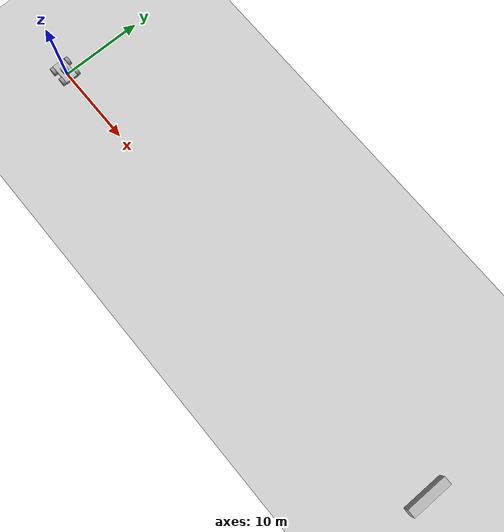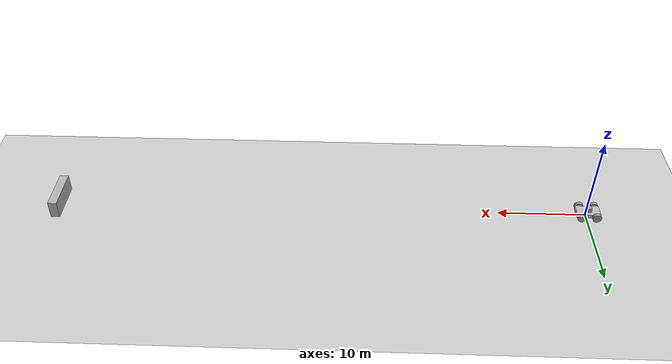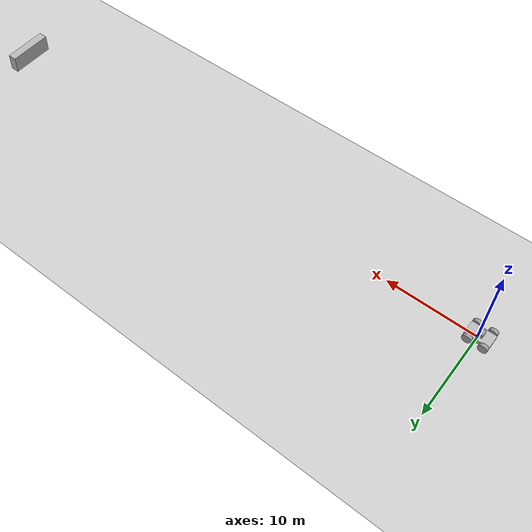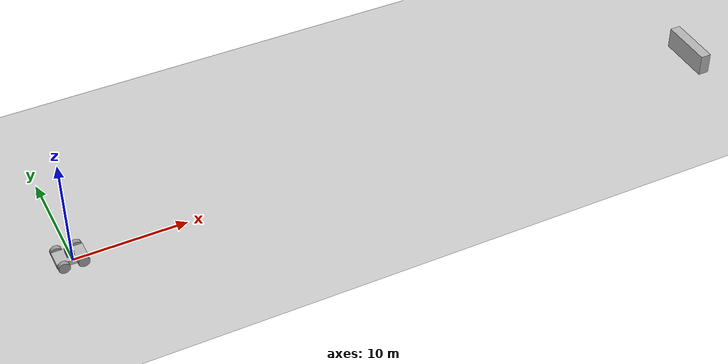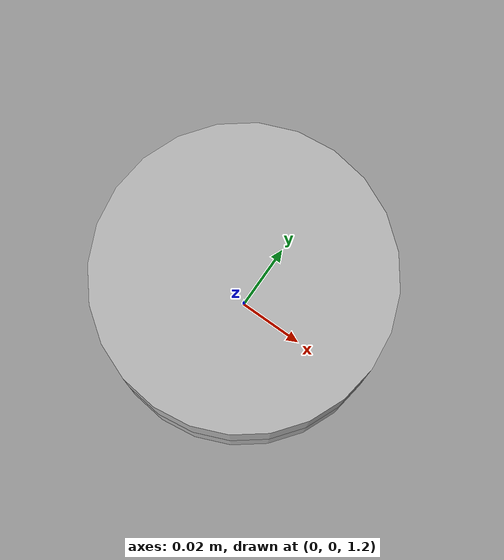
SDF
<?xml version='1.0'?>
<sdf version='1.7'>
<world name="default">

   <!-- Ground Plane -->
    <include>
      <uri>model://ground_plane</uri>
    </include>

    <include>
      <uri>model://sun</uri>
    </include>

  <model name='my_model'>
    <link name='base'>
      <pose>0 0 1.23274 0 -0 0</pose>
      <inertial>
        <mass>1.2</mass>
        <inertia>
          <ixx>0.00108747</ixx>
          <iyy>0.00108747</iyy>
          <izz>0.00109244</izz>
          <ixy>0</ixy>
          <ixz>0</ixz>
          <iyz>0</iyz>
        </inertia>
        <pose>0 0 0 0 -0 0</pose>
      </inertial>
      <self_collide>0</self_collide>
      <enable_wind>0</enable_wind>
      <kinematic>0</kinematic>
      <visual name='base_visual'>
        <geometry>
          <cylinder>
            <radius>0.04267</radius>
            <length>0.05867</length>
          </cylinder>
        </geometry>
        <material>
          <shader type='pixel'/>
          <emissive>0 0 0 1</emissive>
        </material>
        <pose>0 0 0 0 -0 0</pose>
        <transparency>0</transparency>
        <cast_shadows>1</cast_shadows>
      </visual>
      <collision name='base_collision'>
        <laser_retro>0</laser_retro>
        <max_contacts>10</max_contacts>
        <pose>0 0 0 0 -0 0</pose>
        <geometry>
          <cylinder>
            <radius>0.04267</radius>
            <length>0.05867</length>
          </cylinder>
        </geometry>
        <surface>
          <friction>
            <ode>
              <mu>1</mu>
              <mu2>1</mu2>
              <fdir1>0 0 0</fdir1>
              <slip1>0</slip1>
              <slip2>0</slip2>
            </ode>
            <torsional>
              <coefficient>1</coefficient>
              <patch_radius>0</patch_radius>
              <surface_radius>0</surface_radius>
              <use_patch_radius>1</use_patch_radius>
              <ode>
                <slip>0</slip>
              </ode>
            </torsional>
          </friction>
          <bounce>
            <restitution_coefficient>0</restitution_coefficient>
            <threshold>1e+06</threshold>
          </bounce>
          <contact>
            <collide_without_contact>0</collide_without_contact>
            <collide_without_contact_bitmask>1</collide_without_contact_bitmask>
            <collide_bitmask>1</collide_bitmask>
            <ode>
              <soft_cfm>0</soft_cfm>
              <soft_erp>0.2</soft_erp>
              <kp>1e+13</kp>
              <kd>1</kd>
              <max_vel>0.01</max_vel>
              <min_depth>0</min_depth>
            </ode>
            <bullet>
              <split_impulse>1</split_impulse>
              <split_impulse_penetration_threshold>-0.01</split_impulse_penetration_threshold>
              <soft_cfm>0</soft_cfm>
              <soft_erp>0.2</soft_erp>
              <kp>1e+13</kp>
              <kd>1</kd>
            </bullet>
          </contact>
        </surface>
      </collision>
    </link>
    <link name='chassis'>
      <pose>-0.18288 0.000148 0.5 0 -0 0</pose>
      <self_collide>0</self_collide>
      <inertial>
        <pose>0 0 0 0 -0 0</pose>
        <inertia>
          <ixx>1.08076</ixx>
          <ixy>0</ixy>
          <ixz>0</ixz>
          <iyy>2.95434</iyy>
          <iyz>0</iyz>
          <izz>3.87829</izz>
        </inertia>
        <mass>4.85628</mass>
      </inertial>
      <enable_wind>0</enable_wind>
      <kinematic>0</kinematic>
      <visual name='visual'>
        <geometry>
          <box>
            <size>2.6658 1.5738 0.440167</size>
          </box>
        </geometry>
        <material>
          <shader type='pixel'/>
          <emissive>0 0 0 1</emissive>
        </material>
        <pose>0 0 0 0 -0 0</pose>
        <transparency>0</transparency>
        <cast_shadows>1</cast_shadows>
      </visual>
      <collision name='collision'>
        <laser_retro>0</laser_retro>
        <max_contacts>10</max_contacts>
        <pose>0 0 0 0 -0 0</pose>
        <geometry>
          <box>
            <size>2.6658 1.5738 0.440167</size>
          </box>
        </geometry>
        <surface>
          <friction>
            <ode>
              <mu>1</mu>
              <mu2>1</mu2>
              <fdir1>0 0 0</fdir1>
              <slip1>0</slip1>
              <slip2>0</slip2>
            </ode>
            <torsional>
              <coefficient>1</coefficient>
              <patch_radius>0</patch_radius>
              <surface_radius>0</surface_radius>
              <use_patch_radius>1</use_patch_radius>
              <ode>
                <slip>0</slip>
              </ode>
            </torsional>
          </friction>
          <bounce>
            <restitution_coefficient>0</restitution_coefficient>
            <threshold>1e+06</threshold>
          </bounce>
          <contact>
            <collide_without_contact>0</collide_without_contact>
            <collide_without_contact_bitmask>1</collide_without_contact_bitmask>
            <collide_bitmask>1</collide_bitmask>
            <ode>
              <soft_cfm>0</soft_cfm>
              <soft_erp>0.2</soft_erp>
              <kp>1e+13</kp>
              <kd>1</kd>
              <max_vel>0.01</max_vel>
              <min_depth>0</min_depth>
            </ode>
            <bullet>
              <split_impulse>1</split_impulse>
              <split_impulse_penetration_threshold>-0.01</split_impulse_penetration_threshold>
              <soft_cfm>0</soft_cfm>
              <soft_erp>0.2</soft_erp>
              <kp>1e+13</kp>
              <kd>1</kd>
            </bullet>
          </contact>
        </surface>
      </collision>
    </link>
    <link name='left_wheel'>
      <pose>-1.00861 -1.02979 0.5 1.57076 0 -3.14159</pose>
      <self_collide>0</self_collide>
      <inertial>
        <pose>0 0 0 0 -0 0</pose>
        <inertia>
          <ixx>1</ixx>
          <ixy>0</ixy>
          <ixz>0</ixz>
          <iyy>1</iyy>
          <iyz>0</iyz>
          <izz>1</izz>
        </inertia>
        <mass>1</mass>
      </inertial>
      <enable_wind>0</enable_wind>
      <kinematic>0</kinematic>
      <gravity>1</gravity>
      <visual name='visual'>
        <geometry>
          <cylinder>
            <radius>0.5</radius>
            <length>0.4</length>
          </cylinder>
        </geometry>
        <material>
          <shader type='pixel'>
            <normal_map>__default__</normal_map>
          </shader>
          <emissive>0 0 0 1</emissive>
          <script>
            <name>Gazebo/Grey</name>
            <uri>__default__</uri>
          </script>
        </material>
        <pose>0 0 0 0 -0 0</pose>
        <transparency>0</transparency>
        <cast_shadows>1</cast_shadows>
      </visual>
      <collision name='collision'>
        <laser_retro>0</laser_retro>
        <max_contacts>10</max_contacts>
        <pose>0 0 0 0 -0 0</pose>
        <geometry>
          <cylinder>
            <radius>0.5</radius>
            <length>0.4</length>
          </cylinder>
        </geometry>
        <surface>
          <friction>
            <ode>
              <mu>1</mu>
              <mu2>1</mu2>
              <fdir1>0 0 0</fdir1>
              <slip1>0</slip1>
              <slip2>0</slip2>
            </ode>
            <torsional>
              <coefficient>1</coefficient>
              <patch_radius>0</patch_radius>
              <surface_radius>0</surface_radius>
              <use_patch_radius>1</use_patch_radius>
              <ode>
                <slip>0</slip>
              </ode>
            </torsional>
          </friction>
          <bounce>
            <restitution_coefficient>0</restitution_coefficient>
            <threshold>1e+06</threshold>
          </bounce>
          <contact>
            <collide_without_contact>0</collide_without_contact>
            <collide_without_contact_bitmask>1</collide_without_contact_bitmask>
            <collide_bitmask>1</collide_bitmask>
            <ode>
              <soft_cfm>0</soft_cfm>
              <soft_erp>0.2</soft_erp>
              <kp>1e+13</kp>
              <kd>1</kd>
              <max_vel>0.01</max_vel>
              <min_depth>0</min_depth>
            </ode>
            <bullet>
              <split_impulse>1</split_impulse>
              <split_impulse_penetration_threshold>-0.01</split_impulse_penetration_threshold>
              <soft_cfm>0</soft_cfm>
              <soft_erp>0.2</soft_erp>
              <kp>1e+13</kp>
              <kd>1</kd>
            </bullet>
          </contact>
        </surface>
      </collision>
    </link>
    <link name='left_wheel_2'>
      <pose>0.65 -0.9869 0.5 1.57076 0 -3.14159</pose>
      <self_collide>0</self_collide>
      <inertial>
        <pose>0 0 0.5 0 -0 0</pose>
        <inertia>
          <ixx>1</ixx>
          <ixy>0</ixy>
          <ixz>0</ixz>
          <iyy>1</iyy>
          <iyz>0</iyz>
          <izz>1</izz>
        </inertia>
        <mass>1</mass>
      </inertial>
      <enable_wind>0</enable_wind>
      <kinematic>0</kinematic>
      <gravity>1</gravity>
      <visual name='visual'>
        <geometry>
          <cylinder>
            <radius>0.5</radius>
            <length>0.4</length>
          </cylinder>
        </geometry>
        <material>
          <shader type='pixel'>
            <normal_map>__default__</normal_map>
          </shader>
          <emissive>0 0 0 1</emissive>
          <script>
            <name>Gazebo/Grey</name>
            <uri>__default__</uri>
          </script>
        </material>
        <pose>0 0 0 0 -0 0</pose>
        <transparency>0</transparency>
        <cast_shadows>1</cast_shadows>
      </visual>
      <collision name='collision'>
        <laser_retro>0</laser_retro>
        <max_contacts>10</max_contacts>
        <pose>0 0 0 0 -0 0</pose>
        <geometry>
          <cylinder>
            <radius>0.5</radius>
            <length>0.4</length>
          </cylinder>
        </geometry>
        <surface>
          <friction>
            <ode>
              <mu>1</mu>
              <mu2>1</mu2>
              <fdir1>0 0 0</fdir1>
              <slip1>0</slip1>
              <slip2>0</slip2>
            </ode>
            <torsional>
              <coefficient>1</coefficient>
              <patch_radius>0</patch_radius>
              <surface_radius>0</surface_radius>
              <use_patch_radius>1</use_patch_radius>
              <ode>
                <slip>0</slip>
              </ode>
            </torsional>
          </friction>
          <bounce>
            <restitution_coefficient>0</restitution_coefficient>
            <threshold>1e+06</threshold>
          </bounce>
          <contact>
            <collide_without_contact>0</collide_without_contact>
            <collide_without_contact_bitmask>1</collide_without_contact_bitmask>
            <collide_bitmask>1</collide_bitmask>
            <ode>
              <soft_cfm>0</soft_cfm>
              <soft_erp>0.2</soft_erp>
              <kp>1e+13</kp>
              <kd>1</kd>
              <max_vel>0.01</max_vel>
              <min_depth>0</min_depth>
            </ode>
            <bullet>
              <split_impulse>1</split_impulse>
              <split_impulse_penetration_threshold>-0.01</split_impulse_penetration_threshold>
              <soft_cfm>0</soft_cfm>
              <soft_erp>0.2</soft_erp>
              <kp>1e+13</kp>
              <kd>1</kd>
            </bullet>
          </contact>
        </surface>
      </collision>
    </link>
    <link name='link_0'>
      <inertial>
        <mass>0.145074</mass>
        <inertia>
          <ixx>0.00715103</ixx>
          <ixy>0</ixy>
          <ixz>0</ixz>
          <iyy>0.00610989</iyy>
          <iyz>0</iyz>
          <izz>0.0105745</izz>
        </inertia>
        <pose>0 0 0 0 -0 0</pose>
      </inertial>
      <pose>-0.18288 0.000148 0.886746 0 -0 0</pose>
      <self_collide>0</self_collide>
      <enable_wind>0</enable_wind>
      <kinematic>0</kinematic>
      <visual name='visual'>
        <pose>0 0 0 0 -0 0</pose>
        <geometry>
          <box>
            <size>0.62792 0.693111 0.633325</size>
          </box>
        </geometry>
        <material>
          <lighting>1</lighting>
          <script>
            <uri>file://media/materials/scripts/gazebo.material</uri>
            <name>Gazebo/Grey</name>
          </script>
          <shader type='pixel'/>
          <emissive>0 0 0 1</emissive>
        </material>
        <transparency>0</transparency>
        <cast_shadows>1</cast_shadows>
      </visual>
      <collision name='collision'>
        <laser_retro>0</laser_retro>
        <max_contacts>10</max_contacts>
        <pose>0 0 0 0 -0 0</pose>
        <geometry>
          <box>
            <size>0.62792 0.693111 0.633325</size>
          </box>
        </geometry>
        <surface>
          <friction>
            <ode>
              <mu>1</mu>
              <mu2>1</mu2>
              <fdir1>0 0 0</fdir1>
              <slip1>0</slip1>
              <slip2>0</slip2>
            </ode>
            <torsional>
              <coefficient>1</coefficient>
              <patch_radius>0</patch_radius>
              <surface_radius>0</surface_radius>
              <use_patch_radius>1</use_patch_radius>
              <ode>
                <slip>0</slip>
              </ode>
            </torsional>
          </friction>
          <bounce>
            <restitution_coefficient>0</restitution_coefficient>
            <threshold>1e+06</threshold>
          </bounce>
          <contact>
            <collide_without_contact>0</collide_without_contact>
            <collide_without_contact_bitmask>1</collide_without_contact_bitmask>
            <collide_bitmask>1</collide_bitmask>
            <ode>
              <soft_cfm>0</soft_cfm>
              <soft_erp>0.2</soft_erp>
              <kp>1e+13</kp>
              <kd>1</kd>
              <max_vel>0.01</max_vel>
              <min_depth>0</min_depth>
            </ode>
            <bullet>
              <split_impulse>1</split_impulse>
              <split_impulse_penetration_threshold>-0.01</split_impulse_penetration_threshold>
              <soft_cfm>0</soft_cfm>
              <soft_erp>0.2</soft_erp>
              <kp>1e+13</kp>
              <kd>1</kd>
            </bullet>
          </contact>
        </surface>
      </collision>
    </link>
    <link name='right_wheel'>
      <pose>-1.0415 1.00283 0.5 1.57076 0 -3.14159</pose>
      <self_collide>0</self_collide>
      <inertial>
        <pose>0 0 0 0 -0 0</pose>
        <inertia>
          <ixx>1</ixx>
          <ixy>0</ixy>
          <ixz>0</ixz>
          <iyy>1</iyy>
          <iyz>0</iyz>
          <izz>1</izz>
        </inertia>
        <mass>1</mass>
      </inertial>
      <enable_wind>0</enable_wind>
      <kinematic>0</kinematic>
      <gravity>1</gravity>
      <visual name='visual'>
        <geometry>
          <cylinder>
            <radius>0.5</radius>
            <length>0.4</length>
          </cylinder>
        </geometry>
        <material>
          <shader type='pixel'>
            <normal_map>__default__</normal_map>
          </shader>
          <emissive>0 0 0 1</emissive>
          <script>
            <name>Gazebo/Grey</name>
            <uri>__default__</uri>
          </script>
        </material>
        <pose>0 0 0 0 -0 0</pose>
        <transparency>0</transparency>
        <cast_shadows>1</cast_shadows>
      </visual>
      <collision name='collision'>
        <laser_retro>0</laser_retro>
        <max_contacts>10</max_contacts>
        <pose>0 0 0 0 -0 0</pose>
        <geometry>
          <cylinder>
            <radius>0.5</radius>
            <length>0.4</length>
          </cylinder>
        </geometry>
        <surface>
          <friction>
            <ode>
              <mu>1</mu>
              <mu2>1</mu2>
              <fdir1>0 0 0</fdir1>
              <slip1>0</slip1>
              <slip2>0</slip2>
            </ode>
            <torsional>
              <coefficient>1</coefficient>
              <patch_radius>0</patch_radius>
              <surface_radius>0</surface_radius>
              <use_patch_radius>1</use_patch_radius>
              <ode>
                <slip>0</slip>
              </ode>
            </torsional>
          </friction>
          <bounce>
            <restitution_coefficient>0</restitution_coefficient>
            <threshold>1e+06</threshold>
          </bounce>
          <contact>
            <collide_without_contact>0</collide_without_contact>
            <collide_without_contact_bitmask>1</collide_without_contact_bitmask>
            <collide_bitmask>1</collide_bitmask>
            <ode>
              <soft_cfm>0</soft_cfm>
              <soft_erp>0.2</soft_erp>
              <kp>1e+13</kp>
              <kd>1</kd>
              <max_vel>0.01</max_vel>
              <min_depth>0</min_depth>
            </ode>
            <bullet>
              <split_impulse>1</split_impulse>
              <split_impulse_penetration_threshold>-0.01</split_impulse_penetration_threshold>
              <soft_cfm>0</soft_cfm>
              <soft_erp>0.2</soft_erp>
              <kp>1e+13</kp>
              <kd>1</kd>
            </bullet>
          </contact>
        </surface>
      </collision>
    </link>
    <link name='right_wheel_2'>
      <pose>0.649549 0.990184 0.5 1.57076 0 -3.14159</pose>
      <self_collide>0</self_collide>
      <inertial>
        <pose>0 0 0 0 -0 0</pose>
        <inertia>
          <ixx>1</ixx>
          <ixy>0</ixy>
          <ixz>0</ixz>
          <iyy>1</iyy>
          <iyz>0</iyz>
          <izz>1</izz>
        </inertia>
        <mass>1</mass>
      </inertial>
      <enable_wind>0</enable_wind>
      <kinematic>0</kinematic>
      <gravity>1</gravity>
      <visual name='visual'>
        <geometry>
          <cylinder>
            <radius>0.5</radius>
            <length>0.4</length>
          </cylinder>
        </geometry>
        <material>
          <shader type='pixel'>
            <normal_map>__default__</normal_map>
          </shader>
          <emissive>0 0 0 1</emissive>
          <script>
            <name>Gazebo/Grey</name>
            <uri>__default__</uri>
          </script>
        </material>
        <pose>0 0 0 0 -0 0</pose>
        <transparency>0</transparency>
        <cast_shadows>1</cast_shadows>
      </visual>
      <collision name='collision'>
        <laser_retro>0</laser_retro>
        <max_contacts>10</max_contacts>
        <pose>0 0 0 0 -0 0</pose>
        <geometry>
          <cylinder>
            <radius>0.5</radius>
            <length>0.4</length>
          </cylinder>
        </geometry>
        <surface>
          <friction>
            <ode>
              <mu>1</mu>
              <mu2>1</mu2>
              <fdir1>0 0 0</fdir1>
              <slip1>0</slip1>
              <slip2>0</slip2>
            </ode>
            <torsional>
              <coefficient>1</coefficient>
              <patch_radius>0</patch_radius>
              <surface_radius>0</surface_radius>
              <use_patch_radius>1</use_patch_radius>
              <ode>
                <slip>0</slip>
              </ode>
            </torsional>
          </friction>
          <bounce>
            <restitution_coefficient>0</restitution_coefficient>
            <threshold>1e+06</threshold>
          </bounce>
          <contact>
            <collide_without_contact>0</collide_without_contact>
            <collide_without_contact_bitmask>1</collide_without_contact_bitmask>
            <collide_bitmask>1</collide_bitmask>
            <ode>
              <soft_cfm>0</soft_cfm>
              <soft_erp>0.2</soft_erp>
              <kp>1e+13</kp>
              <kd>1</kd>
              <max_vel>0.01</max_vel>
              <min_depth>0</min_depth>
            </ode>
            <bullet>
              <split_impulse>1</split_impulse>
              <split_impulse_penetration_threshold>-0.01</split_impulse_penetration_threshold>
              <soft_cfm>0</soft_cfm>
              <soft_erp>0.2</soft_erp>
              <kp>1e+13</kp>
              <kd>1</kd>
            </bullet>
          </contact>
        </surface>
      </collision>
    </link>
    <link name='test_box'>
      <pose>60.5 -1e-06 1 0 -0 0</pose>
      <inertial>
        <mass>1</mass>
        <inertia>
          <ixx>0.1</ixx>
          <iyy>0.1</iyy>
          <izz>0.1</izz>
          <ixy>0</ixy>
          <ixz>0</ixz>
          <iyz>0</iyz>
        </inertia>
        <pose>0 0 0 0 -0 0</pose>
      </inertial>
      <self_collide>0</self_collide>
      <enable_wind>0</enable_wind>
      <kinematic>0</kinematic>
      <visual name='visual'>
        <geometry>
          <box>
            <size>1 5 2</size>
          </box>
        </geometry>
        <material>
          <ambient>0.7 0.7 0.7 1</ambient>
          <shader type='pixel'/>
          <script>
            <name>ModelPreview_1::test_box::visual_MATERIAL_</name>
            <uri>__default__</uri>
          </script>
        </material>
        <pose>0 0 0 0 -0 0</pose>
        <transparency>0</transparency>
        <cast_shadows>1</cast_shadows>
      </visual>
      <collision name='collision'>
        <laser_retro>0</laser_retro>
        <max_contacts>10</max_contacts>
        <pose>0 0 0 0 -0 0</pose>
        <geometry>
          <box>
            <size>1 5 2</size>
          </box>
        </geometry>
        <surface>
          <friction>
            <ode>
              <mu>1</mu>
              <mu2>1</mu2>
              <fdir1>0 0 0</fdir1>
              <slip1>0</slip1>
              <slip2>0</slip2>
            </ode>
            <torsional>
              <coefficient>1</coefficient>
              <patch_radius>0</patch_radius>
              <surface_radius>0</surface_radius>
              <use_patch_radius>1</use_patch_radius>
              <ode>
                <slip>0</slip>
              </ode>
            </torsional>
          </friction>
          <bounce>
            <restitution_coefficient>0</restitution_coefficient>
            <threshold>1e+06</threshold>
          </bounce>
          <contact>
            <collide_without_contact>0</collide_without_contact>
            <collide_without_contact_bitmask>1</collide_without_contact_bitmask>
            <collide_bitmask>1</collide_bitmask>
            <ode>
              <soft_cfm>0</soft_cfm>
              <soft_erp>0.2</soft_erp>
              <kp>1e+13</kp>
              <kd>1</kd>
              <max_vel>0.01</max_vel>
              <min_depth>0</min_depth>
            </ode>
            <bullet>
              <split_impulse>1</split_impulse>
              <split_impulse_penetration_threshold>-0.01</split_impulse_penetration_threshold>
              <soft_cfm>0</soft_cfm>
              <soft_erp>0.2</soft_erp>
              <kp>1e+13</kp>
              <kd>1</kd>
            </bullet>
          </contact>
        </surface>
      </collision>
    </link>
    <link name='top'>
      <sensor name='sensor' type='ray'>
        <pose>0 0 -0.004645 1.5707 -0 0</pose>
        <visualize>1</visualize>
        <update_rate>30</update_rate>
        <ray>
          <scan>
            <horizontal>
              <samples>32</samples>
              <resolution>1</resolution>
              <min_angle>-0.535292</min_angle>
              <max_angle>0.186227</max_angle>
            </horizontal>
            <vertical>
              <samples>1</samples>
              <resolution>1</resolution>
              <min_angle>0</min_angle>
              <max_angle>0</max_angle>
            </vertical>
          </scan>
          <range>
            <min>0.05</min>
            <max>70</max>
            <resolution>0.02</resolution>
          </range>
          <noise>
            <type>gaussian</type>
            <mean>0</mean>
            <stddev>0.02</stddev>
          </noise>
        </ray>
        <enabled>1</enabled>
      </sensor>
      <pose>-0 -0 1.29886 0 -0 0</pose>
      <inertial>
        <mass>0.1</mass>
        <inertia>
          <ixx>9.0623e-05</ixx>
          <iyy>9.0623e-05</iyy>
          <izz>9.1036e-05</izz>
          <ixy>0</ixy>
          <ixz>0</ixz>
          <iyz>0</iyz>
        </inertia>
        <pose>0 0 0 0 -0 0</pose>
      </inertial>
      <self_collide>0</self_collide>
      <enable_wind>0</enable_wind>
      <kinematic>0</kinematic>
      <visual name='top_visual'>
        <geometry>
          <cylinder>
            <radius>0.04267</radius>
            <length>0.07357</length>
          </cylinder>
        </geometry>
        <material>
          <shader type='pixel'/>
          <emissive>0 0 0 1</emissive>
        </material>
        <pose>0 0 0 0 -0 0</pose>
        <transparency>0</transparency>
        <cast_shadows>1</cast_shadows>
      </visual>
      <collision name='top_collision'>
        <laser_retro>0</laser_retro>
        <max_contacts>10</max_contacts>
        <pose>0 0 0 0 -0 0</pose>
        <geometry>
          <cylinder>
            <radius>0.04267</radius>
            <length>0.07357</length>
          </cylinder>
        </geometry>
        <surface>
          <friction>
            <ode>
              <mu>1</mu>
              <mu2>1</mu2>
              <fdir1>0 0 0</fdir1>
              <slip1>0</slip1>
              <slip2>0</slip2>
            </ode>
            <torsional>
              <coefficient>1</coefficient>
              <patch_radius>0</patch_radius>
              <surface_radius>0</surface_radius>
              <use_patch_radius>1</use_patch_radius>
              <ode>
                <slip>0</slip>
              </ode>
            </torsional>
          </friction>
          <bounce>
            <restitution_coefficient>0</restitution_coefficient>
            <threshold>1e+06</threshold>
          </bounce>
          <contact>
            <collide_without_contact>0</collide_without_contact>
            <collide_without_contact_bitmask>1</collide_without_contact_bitmask>
            <collide_bitmask>1</collide_bitmask>
            <ode>
              <soft_cfm>0</soft_cfm>
              <soft_erp>0.2</soft_erp>
              <kp>1e+13</kp>
              <kd>1</kd>
              <max_vel>0.01</max_vel>
              <min_depth>0</min_depth>
            </ode>
            <bullet>
              <split_impulse>1</split_impulse>
              <split_impulse_penetration_threshold>-0.01</split_impulse_penetration_threshold>
              <soft_cfm>0</soft_cfm>
              <soft_erp>0.2</soft_erp>
              <kp>1e+13</kp>
              <kd>1</kd>
            </bullet>
          </contact>
        </surface>
      </collision>
    </link>
    <joint name='base_JOINT_0' type='revolute'>
      <parent>base</parent>
      <child>top</child>
      <pose>0 0 0 0 -0 0</pose>
      <axis>
        <xyz>0 0 1</xyz>
        <limit>
          <lower>-1.79769e+308</lower>
          <upper>1.79769e+308</upper>
          <effort>-1</effort>
          <velocity>-1</velocity>
        </limit>
        <dynamics>
          <spring_reference>0</spring_reference>
          <spring_stiffness>0</spring_stiffness>
          <damping>0</damping>
          <friction>0</friction>
        </dynamics>
      </axis>
      <physics>
        <ode>
          <limit>
            <cfm>0</cfm>
            <erp>0.2</erp>
          </limit>
          <suspension>
            <cfm>0</cfm>
            <erp>0.2</erp>
          </suspension>
        </ode>
      </physics>
    </joint>
    <joint name='base_JOINT_1' type='revolute'>
      <parent>base</parent>
      <child>top</child>
      <pose>0 0 0 0 -0 0</pose>
      <axis>
        <xyz>0 0 1</xyz>
        <limit>
          <lower>-1.79769e+308</lower>
          <upper>1.79769e+308</upper>
          <effort>-1</effort>
          <velocity>-1</velocity>
        </limit>
        <dynamics>
          <spring_reference>0</spring_reference>
          <spring_stiffness>0</spring_stiffness>
          <damping>0</damping>
          <friction>0</friction>
        </dynamics>
      </axis>
      <physics>
        <ode>
          <limit>
            <cfm>0</cfm>
            <erp>0.2</erp>
          </limit>
          <suspension>
            <cfm>0</cfm>
            <erp>0.2</erp>
          </suspension>
        </ode>
      </physics>
    </joint>
    <joint name='base_JOINT_3' type='revolute'>
      <parent>base</parent>
      <child>top</child>
      <pose>0 0 0 0 -0 0</pose>
      <axis>
        <xyz>0 0 1</xyz>
        <limit>
          <lower>-1.79769e+308</lower>
          <upper>1.79769e+308</upper>
          <effort>-1</effort>
          <velocity>-1</velocity>
        </limit>
        <dynamics>
          <spring_reference>0</spring_reference>
          <spring_stiffness>0</spring_stiffness>
          <damping>0</damping>
          <friction>0</friction>
        </dynamics>
      </axis>
      <physics>
        <ode>
          <limit>
            <cfm>0</cfm>
            <erp>0.2</erp>
          </limit>
          <suspension>
            <cfm>0</cfm>
            <erp>0.2</erp>
          </suspension>
        </ode>
      </physics>
    </joint>
    <joint name='chassis_JOINT_0_0' type='fixed'>
      <parent>chassis</parent>
      <child>link_0</child>
      <pose>0 0 0 0 -0 0</pose>
      <physics>
        <ode>
          <limit>
            <cfm>0</cfm>
            <erp>0.2</erp>
          </limit>
          <suspension>
            <cfm>0</cfm>
            <erp>0.2</erp>
          </suspension>
        </ode>
      </physics>
    </joint>
    <joint name='left_wheel_hinge_2' type='revolute'>
      <parent>chassis</parent>
      <child>left_wheel_2</child>
      <pose>0 0 0 0 -0 0</pose>
      <axis>
        <xyz>0 0 1</xyz>
        <limit>
          <lower>-1.79769e+308</lower>
          <upper>1.79769e+308</upper>
          <effort>-1</effort>
          <velocity>-1</velocity>
        </limit>
        <dynamics>
          <spring_reference>0</spring_reference>
          <spring_stiffness>0</spring_stiffness>
          <damping>0</damping>
          <friction>0</friction>
        </dynamics>
      </axis>
      <physics>
        <ode>
          <limit>
            <cfm>0</cfm>
            <erp>0.2</erp>
          </limit>
          <suspension>
            <cfm>0</cfm>
            <erp>0.2</erp>
          </suspension>
        </ode>
      </physics>
    </joint>
    <joint name='left_wheel_hinge' type='revolute'>
      <parent>chassis</parent>
      <child>left_wheel</child>
      <pose>0 0 0 0 -0 0</pose>
      <axis>
        <xyz>0 0 1</xyz>
        <limit>
          <lower>-1.79769e+308</lower>
          <upper>1.79769e+308</upper>
          <effort>-1</effort>
          <velocity>-1</velocity>
        </limit>
        <dynamics>
          <spring_reference>0</spring_reference>
          <spring_stiffness>0</spring_stiffness>
          <damping>0</damping>
          <friction>0</friction>
        </dynamics>
      </axis>
      <physics>
        <ode>
          <limit>
            <cfm>0</cfm>
            <erp>0.2</erp>
          </limit>
          <suspension>
            <cfm>0</cfm>
            <erp>0.2</erp>
          </suspension>
        </ode>
      </physics>
    </joint>
    <joint name='link_0_JOINT_0' type='fixed'>
      <parent>link_0</parent>
      <child>base</child>
      <pose>0 0 0 0 -0 0</pose>
      <physics>
        <ode>
          <limit>
            <cfm>0</cfm>
            <erp>0.2</erp>
          </limit>
          <suspension>
            <cfm>0</cfm>
            <erp>0.2</erp>
          </suspension>
        </ode>
      </physics>
    </joint>
    <joint name='link_0_JOINT_2' type='fixed'>
      <parent>link_0</parent>
      <child>base</child>
      <pose>0 0 0 0 -0 0</pose>
      <physics>
        <ode>
          <limit>
            <cfm>0</cfm>
            <erp>0.2</erp>
          </limit>
          <suspension>
            <cfm>0</cfm>
            <erp>0.2</erp>
          </suspension>
        </ode>
      </physics>
    </joint>
    <joint name='right_wheel_hinge_2' type='revolute'>
      <parent>chassis</parent>
      <child>right_wheel_2</child>
      <pose>0 0 0 0 -0 0</pose>
      <axis>
        <xyz>0 0 1</xyz>
        <limit>
          <lower>-1.79769e+308</lower>
          <upper>1.79769e+308</upper>
          <effort>-1</effort>
          <velocity>-1</velocity>
        </limit>
        <dynamics>
          <spring_reference>0</spring_reference>
          <spring_stiffness>0</spring_stiffness>
          <damping>0</damping>
          <friction>0</friction>
        </dynamics>
      </axis>
      <physics>
        <ode>
          <limit>
            <cfm>0</cfm>
            <erp>0.2</erp>
          </limit>
          <suspension>
            <cfm>0</cfm>
            <erp>0.2</erp>
          </suspension>
        </ode>
      </physics>
    </joint>
    <joint name='right_wheel_hinge' type='revolute'>
      <parent>chassis</parent>
      <child>right_wheel</child>
      <pose>0 0 0 0 -0 0</pose>
      <axis>
        <xyz>0 0 1</xyz>
        <limit>
          <lower>-1.79769e+308</lower>
          <upper>1.79769e+308</upper>
          <effort>-1</effort>
          <velocity>-1</velocity>
        </limit>
        <dynamics>
          <spring_reference>0</spring_reference>
          <spring_stiffness>0</spring_stiffness>
          <damping>0</damping>
          <friction>0</friction>
        </dynamics>
      </axis>
      <physics>
        <ode>
          <limit>
            <cfm>0</cfm>
            <erp>0.2</erp>
          </limit>
          <suspension>
            <cfm>0</cfm>
            <erp>0.2</erp>
          </suspension>
        </ode>
      </physics>
    </joint>
    <static>0</static>
    <allow_auto_disable>1</allow_auto_disable>
    <plugin name='model_push' filename='libmodel_push.so'/>
  </model>
  </world>
</sdf>
